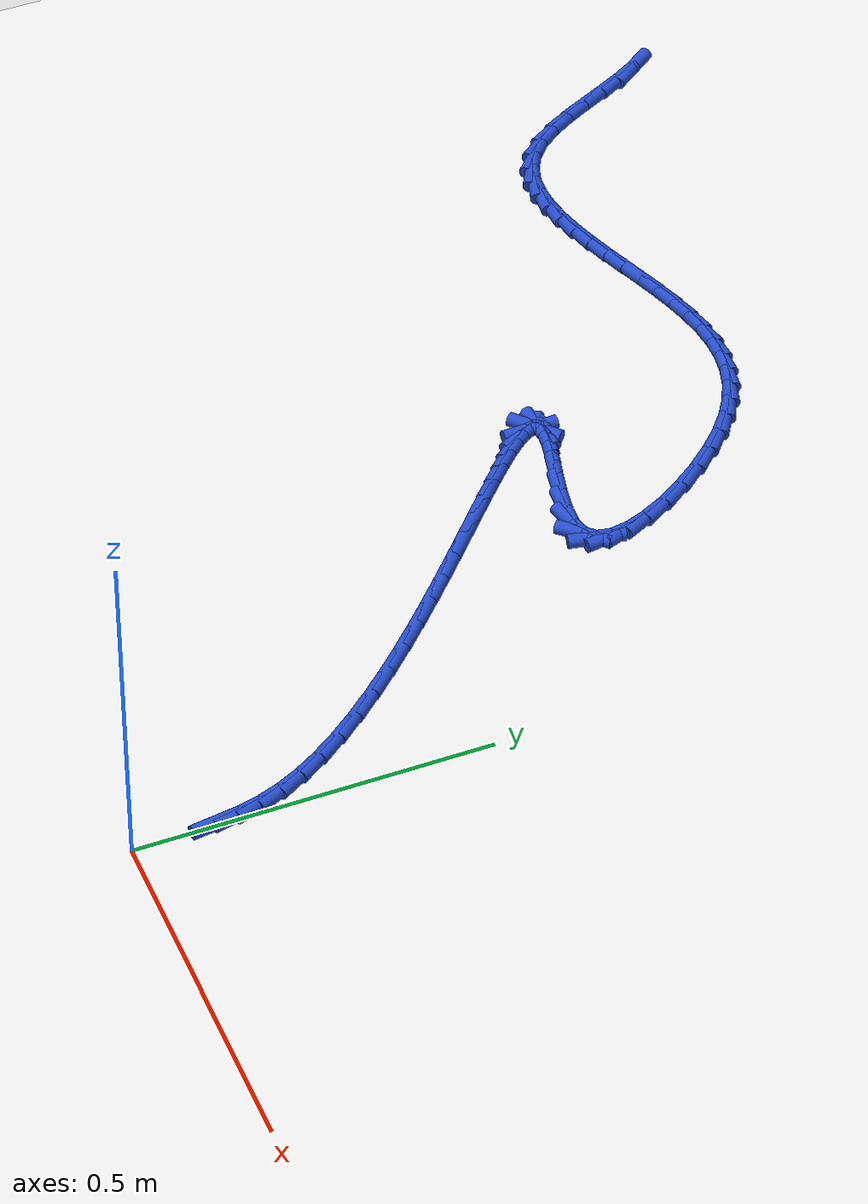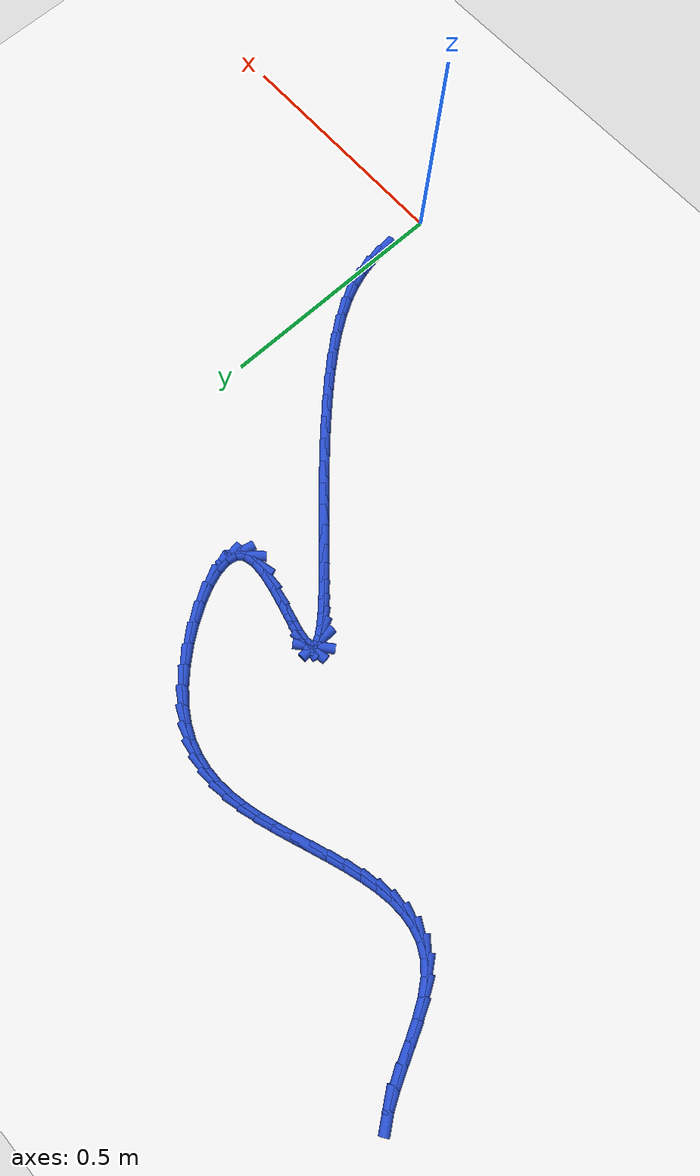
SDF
<sdf version="1.6">
 <world name="default">
  <model name="ground_plane">
   <static>1</static>
   <link name="link">
    <collision name="collision">
     <geometry><plane><normal>0 0 1</normal><size>100 100</size></plane></geometry>
     <surface><friction><ode><mu>100</mu><mu2>50</mu2></ode></friction></surface>
    </collision>
    <visual name="visual">
     <cast_shadows>0</cast_shadows>
     <geometry><plane><normal>0 0 1</normal><size>100 100</size></plane></geometry>
     <material>
      <script><uri>file://media/materials/scripts/gazebo.material</uri><name>Gazebo/WhiteGlow</name></script>
     </material>
    </visual>
   </link>
  </model>
  <model name="line">
   <link name="link_4">
    <pose>0.0023824561519398537 0.11782560075073899 0.01 0 1.57 -1.4353394648097961</pose>
    <collision name="collision">
     <geometry><cylinder><radius>0.01</radius><length>0.08</length></cylinder></geometry>
    </collision>
    <visual name="visual">
     <material>
      <script><name>Gazebo/Blue</name><uri>file://media/materials/scripts/gazebo.material</uri></script>
     </material>
     <geometry><cylinder><radius>0.01</radius><length>0.08</length></cylinder></geometry>
    </visual>
   </link>
   <link name="link_5">
    <pose>-0.0017239992584433435 0.14795555300501012 0.01 0 1.57 -1.3412280706990383</pose>
    <collision name="collision">
     <geometry><cylinder><radius>0.01</radius><length>0.08</length></cylinder></geometry>
    </collision>
    <visual name="visual">
     <material>
      <script><name>Gazebo/Blue</name><uri>file://media/materials/scripts/gazebo.material</uri></script>
     </material>
     <geometry><cylinder><radius>0.01</radius><length>0.08</length></cylinder></geometry>
    </visual>
   </link>
   <link name="link_6">
    <pose>-0.008896373854093979 0.1786476499546708 0.01 0 1.57 -1.2386501903018092</pose>
    <collision name="collision">
     <geometry><cylinder><radius>0.01</radius><length>0.08</length></cylinder></geometry>
    </collision>
    <visual name="visual">
     <material>
      <script><name>Gazebo/Blue</name><uri>file://media/materials/scripts/gazebo.material</uri></script>
     </material>
     <geometry><cylinder><radius>0.01</radius><length>0.08</length></cylinder></geometry>
    </visual>
   </link>
   <link name="link_7">
    <pose>-0.01972721333797213 0.21004825353409845 0.01 0 1.57 -1.1343315740553832</pose>
    <collision name="collision">
     <geometry><cylinder><radius>0.01</radius><length>0.08</length></cylinder></geometry>
    </collision>
    <visual name="visual">
     <material>
      <script><name>Gazebo/Blue</name><uri>file://media/materials/scripts/gazebo.material</uri></script>
     </material>
     <geometry><cylinder><radius>0.01</radius><length>0.08</length></cylinder></geometry>
    </visual>
   </link>
   <link name="link_8">
    <pose>-0.034767137621708605 0.24229032603372597 0.01 0 1.57 -1.04424895788949</pose>
    <collision name="collision">
     <geometry><cylinder><radius>0.01</radius><length>0.08</length></cylinder></geometry>
    </collision>
    <visual name="visual">
     <material>
      <script><name>Gazebo/Blue</name><uri>file://media/materials/scripts/gazebo.material</uri></script>
     </material>
     <geometry><cylinder><radius>0.01</radius><length>0.08</length></cylinder></geometry>
    </visual>
   </link>
   <link name="link_9">
    <pose>-0.05396341555243429 0.275313996426315 0.01 0 1.57 -0.9736424970683031</pose>
    <collision name="collision">
     <geometry><cylinder><radius>0.01</radius><length>0.08</length></cylinder></geometry>
    </collision>
    <visual name="visual">
     <material>
      <script><name>Gazebo/Blue</name><uri>file://media/materials/scripts/gazebo.material</uri></script>
     </material>
     <geometry><cylinder><radius>0.01</radius><length>0.08</length></cylinder></geometry>
    </visual>
   </link>
   <link name="link_10">
    <pose>-0.07681082350426537 0.3089147753522391 0.01 0 1.57 -0.9178499734605542</pose>
    <collision name="collision">
     <geometry><cylinder><radius>0.01</radius><length>0.08</length></cylinder></geometry>
    </collision>
    <visual name="visual">
     <material>
      <script><name>Gazebo/Blue</name><uri>file://media/materials/scripts/gazebo.material</uri></script>
     </material>
     <geometry><cylinder><radius>0.01</radius><length>0.08</length></cylinder></geometry>
    </visual>
   </link>
   <link name="link_11">
    <pose>-0.10279316896690821 0.3428846677542832 0.01 0 1.57 -0.8733222555795672</pose>
    <collision name="collision">
     <geometry><cylinder><radius>0.01</radius><length>0.08</length></cylinder></geometry>
    </collision>
    <visual name="visual">
     <material>
      <script><name>Gazebo/Blue</name><uri>file://media/materials/scripts/gazebo.material</uri></script>
     </material>
     <geometry><cylinder><radius>0.01</radius><length>0.08</length></cylinder></geometry>
    </visual>
   </link>
   <link name="link_12">
    <pose>-0.13139425943006916 0.3770156785752323 0.01 0 1.57 -0.8375288050863591</pose>
    <collision name="collision">
     <geometry><cylinder><radius>0.01</radius><length>0.08</length></cylinder></geometry>
    </collision>
    <visual name="visual">
     <material>
      <script><name>Gazebo/Blue</name><uri>file://media/materials/scripts/gazebo.material</uri></script>
     </material>
     <geometry><cylinder><radius>0.01</radius><length>0.08</length></cylinder></geometry>
    </visual>
   </link>
   <link name="link_13">
    <pose>-0.16209790238345462 0.4110998127578713 0.01 0 1.57 -0.8086740053437779</pose>
    <collision name="collision">
     <geometry><cylinder><radius>0.01</radius><length>0.08</length></cylinder></geometry>
    </collision>
    <visual name="visual">
     <material>
      <script><name>Gazebo/Blue</name><uri>file://media/materials/scripts/gazebo.material</uri></script>
     </material>
     <geometry><cylinder><radius>0.01</radius><length>0.08</length></cylinder></geometry>
    </visual>
   </link>
   <link name="link_14">
    <pose>-0.19438790531677103 0.44492907524498543 0.01 0 1.57 -0.7854914595426359</pose>
    <collision name="collision">
     <geometry><cylinder><radius>0.01</radius><length>0.08</length></cylinder></geometry>
    </collision>
    <visual name="visual">
     <material>
      <script><name>Gazebo/Blue</name><uri>file://media/materials/scripts/gazebo.material</uri></script>
     </material>
     <geometry><cylinder><radius>0.01</radius><length>0.08</length></cylinder></geometry>
    </visual>
   </link>
   <link name="link_15">
    <pose>-0.22774807571972458 0.47829547097935926 0.01 0 1.57 -0.767105393911474</pose>
    <collision name="collision">
     <geometry><cylinder><radius>0.01</radius><length>0.08</length></cylinder></geometry>
    </collision>
    <visual name="visual">
     <material>
      <script><name>Gazebo/Blue</name><uri>file://media/materials/scripts/gazebo.material</uri></script>
     </material>
     <geometry><cylinder><radius>0.01</radius><length>0.08</length></cylinder></geometry>
    </visual>
   </link>
   <link name="link_16">
    <pose>-0.26166222108202186 0.510991004903778 0.01 0 1.57 -0.7529434532309567</pose>
    <collision name="collision">
     <geometry><cylinder><radius>0.01</radius><length>0.08</length></cylinder></geometry>
    </collision>
    <visual name="visual">
     <material>
      <script><name>Gazebo/Blue</name><uri>file://media/materials/scripts/gazebo.material</uri></script>
     </material>
     <geometry><cylinder><radius>0.01</radius><length>0.08</length></cylinder></geometry>
    </visual>
   </link>
   <link name="link_17">
    <pose>-0.2956141488933692 0.5428076819610268 0.01 0 1.57 -0.7426897292777561</pose>
    <collision name="collision">
     <geometry><cylinder><radius>0.01</radius><length>0.08</length></cylinder></geometry>
    </collision>
    <visual name="visual">
     <material>
      <script><name>Gazebo/Blue</name><uri>file://media/materials/scripts/gazebo.material</uri></script>
     </material>
     <geometry><cylinder><radius>0.01</radius><length>0.08</length></cylinder></geometry>
    </visual>
   </link>
   <link name="link_18">
    <pose>-0.32908766664347294 0.5735375070938905 0.01 0 1.57 -0.7362736791888564</pose>
    <collision name="collision">
     <geometry><cylinder><radius>0.01</radius><length>0.08</length></cylinder></geometry>
    </collision>
    <visual name="visual">
     <material>
      <script><name>Gazebo/Blue</name><uri>file://media/materials/scripts/gazebo.material</uri></script>
     </material>
     <geometry><cylinder><radius>0.01</radius><length>0.08</length></cylinder></geometry>
    </visual>
   </link>
   <link name="link_19">
    <pose>-0.3615665818220395 0.6029724852451539 0.01 0 1.57 -0.733899243789681</pose>
    <collision name="collision">
     <geometry><cylinder><radius>0.01</radius><length>0.08</length></cylinder></geometry>
    </collision>
    <visual name="visual">
     <material>
      <script><name>Gazebo/Blue</name><uri>file://media/materials/scripts/gazebo.material</uri></script>
     </material>
     <geometry><cylinder><radius>0.01</radius><length>0.08</length></cylinder></geometry>
    </visual>
   </link>
   <link name="link_20">
    <pose>-0.3925347019187752 0.6309046213576021 0.01 0 1.57 -0.7361321577931114</pose>
    <collision name="collision">
     <geometry><cylinder><radius>0.01</radius><length>0.08</length></cylinder></geometry>
    </collision>
    <visual name="visual">
     <material>
      <script><name>Gazebo/Blue</name><uri>file://media/materials/scripts/gazebo.material</uri></script>
     </material>
     <geometry><cylinder><radius>0.01</radius><length>0.08</length></cylinder></geometry>
    </visual>
   </link>
   <link name="link_21">
    <pose>-0.4214758344233865 0.6571259203740201 0.01 0 1.57 -0.7440909394986537</pose>
    <collision name="collision">
     <geometry><cylinder><radius>0.01</radius><length>0.08</length></cylinder></geometry>
    </collision>
    <visual name="visual">
     <material>
      <script><name>Gazebo/Blue</name><uri>file://media/materials/scripts/gazebo.material</uri></script>
     </material>
     <geometry><cylinder><radius>0.01</radius><length>0.08</length></cylinder></geometry>
    </visual>
   </link>
   <link name="link_22">
    <pose>-0.44787378682557955 0.6814283872371926 0.01 0 1.57 -0.7598525828995999</pose>
    <collision name="collision">
     <geometry><cylinder><radius>0.01</radius><length>0.08</length></cylinder></geometry>
    </collision>
    <visual name="visual">
     <material>
      <script><name>Gazebo/Blue</name><uri>file://media/materials/scripts/gazebo.material</uri></script>
     </material>
     <geometry><cylinder><radius>0.01</radius><length>0.08</length></cylinder></geometry>
    </visual>
   </link>
   <link name="link_23">
    <pose>-0.47121236661506116 0.7036040268899051 0.01 0 1.57 -0.7873626858802841</pose>
    <collision name="collision">
     <geometry><cylinder><radius>0.01</radius><length>0.08</length></cylinder></geometry>
    </collision>
    <visual name="visual">
     <material>
      <script><name>Gazebo/Blue</name><uri>file://media/materials/scripts/gazebo.material</uri></script>
     </material>
     <geometry><cylinder><radius>0.01</radius><length>0.08</length></cylinder></geometry>
    </visual>
   </link>
   <link name="link_24">
    <pose>-0.49097538128153717 0.723444844274942 0.01 0 1.57 -0.8346993901617263</pose>
    <collision name="collision">
     <geometry><cylinder><radius>0.01</radius><length>0.08</length></cylinder></geometry>
    </collision>
    <visual name="visual">
     <material>
      <script><name>Gazebo/Blue</name><uri>file://media/materials/scripts/gazebo.material</uri></script>
     </material>
     <geometry><cylinder><radius>0.01</radius><length>0.08</length></cylinder></geometry>
    </visual>
   </link>
   <link name="link_25">
    <pose>-0.5066466383147146 0.740742844335089 0.01 0 1.57 -0.920601583920619</pose>
    <collision name="collision">
     <geometry><cylinder><radius>0.01</radius><length>0.08</length></cylinder></geometry>
    </collision>
    <visual name="visual">
     <material>
      <script><name>Gazebo/Blue</name><uri>file://media/materials/scripts/gazebo.material</uri></script>
     </material>
     <geometry><cylinder><radius>0.01</radius><length>0.08</length></cylinder></geometry>
    </visual>
   </link>
   <link name="link_26">
    <pose>-0.517709945204299 0.75529003201313 0.01 0 1.57 -1.0971906398215314</pose>
    <collision name="collision">
     <geometry><cylinder><radius>0.01</radius><length>0.08</length></cylinder></geometry>
    </collision>
    <visual name="visual">
     <material>
      <script><name>Gazebo/Blue</name><uri>file://media/materials/scripts/gazebo.material</uri></script>
     </material>
     <geometry><cylinder><radius>0.01</radius><length>0.08</length></cylinder></geometry>
    </visual>
   </link>
   <link name="link_27">
    <pose>-0.5236491094399977 0.7668784122518512 0.01 0 1.57 -1.5353274684425158</pose>
    <collision name="collision">
     <geometry><cylinder><radius>0.01</radius><length>0.08</length></cylinder></geometry>
    </collision>
    <visual name="visual">
     <material>
      <script><name>Gazebo/Blue</name><uri>file://media/materials/scripts/gazebo.material</uri></script>
     </material>
     <geometry><cylinder><radius>0.01</radius><length>0.08</length></cylinder></geometry>
    </visual>
   </link>
   <link name="link_28">
    <pose>-0.5239479385115163 0.7752999899940368 0.01 0 1.57 0.7111691689588562</pose>
    <collision name="collision">
     <geometry><cylinder><radius>0.01</radius><length>0.08</length></cylinder></geometry>
    </collision>
    <visual name="visual">
     <material>
      <script><name>Gazebo/Blue</name><uri>file://media/materials/scripts/gazebo.material</uri></script>
     </material>
     <geometry><cylinder><radius>0.01</radius><length>0.08</length></cylinder></geometry>
    </visual>
   </link>
   <link name="link_29">
    <pose>-0.5180902399085616 0.780346770182472 0.01 0 1.57 0.11630738938080655</pose>
    <collision name="collision">
     <geometry><cylinder><radius>0.01</radius><length>0.08</length></cylinder></geometry>
    </collision>
    <visual name="visual">
     <material>
      <script><name>Gazebo/Blue</name><uri>file://media/materials/scripts/gazebo.material</uri></script>
     </material>
     <geometry><cylinder><radius>0.01</radius><length>0.08</length></cylinder></geometry>
    </visual>
   </link>
   <link name="link_30">
    <pose>-0.50555982112084 0.7818107577599416 0.01 0 1.57 -0.11745280071256992</pose>
    <collision name="collision">
     <geometry><cylinder><radius>0.01</radius><length>0.08</length></cylinder></geometry>
    </collision>
    <visual name="visual">
     <material>
      <script><name>Gazebo/Blue</name><uri>file://media/materials/scripts/gazebo.material</uri></script>
     </material>
     <geometry><cylinder><radius>0.01</radius><length>0.08</length></cylinder></geometry>
    </visual>
   </link>
   <link name="link_31">
    <pose>-0.4858404896380576 0.779483957669231 0.01 0 1.57 -0.2210084833847514</pose>
    <collision name="collision">
     <geometry><cylinder><radius>0.01</radius><length>0.08</length></cylinder></geometry>
    </collision>
    <visual name="visual">
     <material>
      <script><name>Gazebo/Blue</name><uri>file://media/materials/scripts/gazebo.material</uri></script>
     </material>
     <geometry><cylinder><radius>0.01</radius><length>0.08</length></cylinder></geometry>
    </visual>
   </link>
   <link name="link_32">
    <pose>-0.4587817184295532 0.7734044315404087 0.01 0 1.57 -0.2501404502065189</pose>
    <collision name="collision">
     <geometry><cylinder><radius>0.01</radius><length>0.08</length></cylinder></geometry>
    </collision>
    <visual name="visual">
     <material>
      <script><name>Gazebo/Blue</name><uri>file://media/materials/scripts/gazebo.material</uri></script>
     </material>
     <geometry><cylinder><radius>0.01</radius><length>0.08</length></cylinder></geometry>
    </visual>
   </link>
   <link name="link_33">
    <pose>-0.4265503221247066 0.7651695826530442 0.01 0 1.57 -0.2340038350483823</pose>
    <collision name="collision">
     <geometry><cylinder><radius>0.01</radius><length>0.08</length></cylinder></geometry>
    </collision>
    <visual name="visual">
     <material>
      <script><name>Gazebo/Blue</name><uri>file://media/materials/scripts/gazebo.material</uri></script>
     </material>
     <geometry><cylinder><radius>0.01</radius><length>0.08</length></cylinder></geometry>
    </visual>
   </link>
   <link name="link_34">
    <pose>-0.3922181182099734 0.7569857916646607 0.01 0 1.57 -0.17577822024683615</pose>
    <collision name="collision">
     <geometry><cylinder><radius>0.01</radius><length>0.08</length></cylinder></geometry>
    </collision>
    <visual name="visual">
     <material>
      <script><name>Gazebo/Blue</name><uri>file://media/materials/scripts/gazebo.material</uri></script>
     </material>
     <geometry><cylinder><radius>0.01</radius><length>0.08</length></cylinder></geometry>
    </visual>
   </link>
   <link name="link_35">
    <pose>-0.3588590000979135 0.7510608361256487 0.01 0 1.57 -0.049711181442765685</pose>
    <collision name="collision">
     <geometry><cylinder><radius>0.01</radius><length>0.08</length></cylinder></geometry>
    </collision>
    <visual name="visual">
     <material>
      <script><name>Gazebo/Blue</name><uri>file://media/materials/scripts/gazebo.material</uri></script>
     </material>
     <geometry><cylinder><radius>0.01</radius><length>0.08</length></cylinder></geometry>
    </visual>
   </link>
   <link name="link_36">
    <pose>-0.3295468612010875 0.7496024935863989 0.01 0 1.57 0.23085373428212153</pose>
    <collision name="collision">
     <geometry><cylinder><radius>0.01</radius><length>0.08</length></cylinder></geometry>
    </collision>
    <visual name="visual">
     <material>
      <script><name>Gazebo/Blue</name><uri>file://media/materials/scripts/gazebo.material</uri></script>
     </material>
     <geometry><cylinder><radius>0.01</radius><length>0.08</length></cylinder></geometry>
    </visual>
   </link>
   <link name="link_37">
    <pose>-0.3073554871068196 0.7548184447226095 0.01 0 1.57 0.806841206505881</pose>
    <collision name="collision">
     <geometry><cylinder><radius>0.01</radius><length>0.08</length></cylinder></geometry>
    </collision>
    <visual name="visual">
     <material>
      <script><name>Gazebo/Blue</name><uri>file://media/materials/scripts/gazebo.material</uri></script>
     </material>
     <geometry><cylinder><radius>0.01</radius><length>0.08</length></cylinder></geometry>
    </visual>
   </link>
   <link name="link_38">
    <pose>-0.2945476305047943 0.7681877044053672 0.01 0 1.57 1.3818599184849405</pose>
    <collision name="collision">
     <geometry><cylinder><radius>0.01</radius><length>0.08</length></cylinder></geometry>
    </collision>
    <visual name="visual">
     <material>
      <script><name>Gazebo/Blue</name><uri>file://media/materials/scripts/gazebo.material</uri></script>
     </material>
     <geometry><cylinder><radius>0.01</radius><length>0.08</length></cylinder></geometry>
    </visual>
   </link>
   <link name="link_39">
    <pose>-0.29062386848283916 0.7887076336625384 0.01 0 1.57 -1.4236883605855977</pose>
    <collision name="collision">
     <geometry><cylinder><radius>0.01</radius><length>0.08</length></cylinder></geometry>
    </collision>
    <visual name="visual">
     <material>
      <script><name>Gazebo/Blue</name><uri>file://media/materials/scripts/gazebo.material</uri></script>
     </material>
     <geometry><cylinder><radius>0.01</radius><length>0.08</length></cylinder></geometry>
    </visual>
   </link>
   <link name="link_40">
    <pose>-0.2944972695206044 0.8148477512680685 0.01 0 1.57 -1.2340273860745257</pose>
    <collision name="collision">
     <geometry><cylinder><radius>0.01</radius><length>0.08</length></cylinder></geometry>
    </collision>
    <visual name="visual">
     <material>
      <script><name>Gazebo/Blue</name><uri>file://media/materials/scripts/gazebo.material</uri></script>
     </material>
     <geometry><cylinder><radius>0.01</radius><length>0.08</length></cylinder></geometry>
    </visual>
   </link>
   <link name="link_41">
    <pose>-0.3050809020977397 0.8450775759959032 0.01 0 1.57 -1.111736143907085</pose>
    <collision name="collision">
     <geometry><cylinder><radius>0.01</radius><length>0.08</length></cylinder></geometry>
    </collision>
    <visual name="visual">
     <material>
      <script><name>Gazebo/Blue</name><uri>file://media/materials/scripts/gazebo.material</uri></script>
     </material>
     <geometry><cylinder><radius>0.01</radius><length>0.08</length></cylinder></geometry>
    </visual>
   </link>
   <link name="link_42">
    <pose>-0.32128783469389494 0.8778666266199875 0.01 0 1.57 -1.02059358967457</pose>
    <collision name="collision">
     <geometry><cylinder><radius>0.01</radius><length>0.08</length></cylinder></geometry>
    </collision>
    <visual name="visual">
     <material>
      <script><name>Gazebo/Blue</name><uri>file://media/materials/scripts/gazebo.material</uri></script>
     </material>
     <geometry><cylinder><radius>0.01</radius><length>0.08</length></cylinder></geometry>
    </visual>
   </link>
   <link name="link_43">
    <pose>-0.3420311357887203 0.911684421914267 0.01 0 1.57 -0.9427292144932088</pose>
    <collision name="collision">
     <geometry><cylinder><radius>0.01</radius><length>0.08</length></cylinder></geometry>
    </collision>
    <visual name="visual">
     <material>
      <script><name>Gazebo/Blue</name><uri>file://media/materials/scripts/gazebo.material</uri></script>
     </material>
     <geometry><cylinder><radius>0.01</radius><length>0.08</length></cylinder></geometry>
    </visual>
   </link>
   <link name="link_44">
    <pose>-0.3662238738618657 0.9450004806526877 0.01 0 1.57 -0.8669711093233123</pose>
    <collision name="collision">
     <geometry><cylinder><radius>0.01</radius><length>0.08</length></cylinder></geometry>
    </collision>
    <visual name="visual">
     <material>
      <script><name>Gazebo/Blue</name><uri>file://media/materials/scripts/gazebo.material</uri></script>
     </material>
     <geometry><cylinder><radius>0.01</radius><length>0.08</length></cylinder></geometry>
    </visual>
   </link>
   <link name="link_45">
    <pose>-0.3927791173929808 0.9762843216091943 0.01 0 1.57 -0.7834238788024632</pose>
    <collision name="collision">
     <geometry><cylinder><radius>0.01</radius><length>0.08</length></cylinder></geometry>
    </collision>
    <visual name="visual">
     <material>
      <script><name>Gazebo/Blue</name><uri>file://media/materials/scripts/gazebo.material</uri></script>
     </material>
     <geometry><cylinder><radius>0.01</radius><length>0.08</length></cylinder></geometry>
    </visual>
   </link>
   <link name="link_46">
    <pose>-0.42060993486171594 1.004005463557733 0.01 0 1.57 -0.68135008948826</pose>
    <collision name="collision">
     <geometry><cylinder><radius>0.01</radius><length>0.08</length></cylinder></geometry>
    </collision>
    <visual name="visual">
     <material>
      <script><name>Gazebo/Blue</name><uri>file://media/materials/scripts/gazebo.material</uri></script>
     </material>
     <geometry><cylinder><radius>0.01</radius><length>0.08</length></cylinder></geometry>
    </visual>
   </link>
   <link name="link_47">
    <pose>-0.4487565725889073 1.0268294813146133 0.01 0 1.57 -0.5614868905433444</pose>
    <collision name="collision">
     <geometry><cylinder><radius>0.01</radius><length>0.08</length></cylinder></geometry>
    </collision>
    <visual name="visual">
     <material>
      <script><name>Gazebo/Blue</name><uri>file://media/materials/scripts/gazebo.material</uri></script>
     </material>
     <geometry><cylinder><radius>0.01</radius><length>0.08</length></cylinder></geometry>
    </visual>
   </link>
   <link name="link_48">
    <pose>-0.4770344089896217 1.044616885301963 0.01 0 1.57 -0.42951385783106766</pose>
    <collision name="collision">
     <geometry><cylinder><radius>0.01</radius><length>0.08</length></cylinder></geometry>
    </collision>
    <visual name="visual">
     <material>
      <script><name>Gazebo/Blue</name><uri>file://media/materials/scripts/gazebo.material</uri></script>
     </material>
     <geometry><cylinder><radius>0.01</radius><length>0.08</length></cylinder></geometry>
    </visual>
   </link>
   <link name="link_49">
    <pose>-0.5055508287335735 1.0576783397587843 0.01 0 1.57 -0.29107896437109526</pose>
    <collision name="collision">
     <geometry><cylinder><radius>0.01</radius><length>0.08</length></cylinder></geometry>
    </collision>
    <visual name="visual">
     <material>
      <script><name>Gazebo/Blue</name><uri>file://media/materials/scripts/gazebo.material</uri></script>
     </material>
     <geometry><cylinder><radius>0.01</radius><length>0.08</length></cylinder></geometry>
    </visual>
   </link>
   <link name="link_50">
    <pose>-0.5344137494787723 1.0663253305733127 0.01 0 1.57 -0.15377048607688243</pose>
    <collision name="collision">
     <geometry><cylinder><radius>0.01</radius><length>0.08</length></cylinder></geometry>
    </collision>
    <visual name="visual">
     <material>
      <script><name>Gazebo/Blue</name><uri>file://media/materials/scripts/gazebo.material</uri></script>
     </material>
     <geometry><cylinder><radius>0.01</radius><length>0.08</length></cylinder></geometry>
    </visual>
   </link>
   <link name="link_51">
    <pose>-0.5637310888832271 1.070869343633784 0.01 0 1.57 -0.025179729439198904</pose>
    <collision name="collision">
     <geometry><cylinder><radius>0.01</radius><length>0.08</length></cylinder></geometry>
    </collision>
    <visual name="visual">
     <material>
      <script><name>Gazebo/Blue</name><uri>file://media/materials/scripts/gazebo.material</uri></script>
     </material>
     <geometry><cylinder><radius>0.01</radius><length>0.08</length></cylinder></geometry>
    </visual>
   </link>
   <link name="link_52">
    <pose>-0.5936107646049474 1.0716218648284324 0.01 0 1.57 0.08904349330686956</pose>
    <collision name="collision">
     <geometry><cylinder><radius>0.01</radius><length>0.08</length></cylinder></geometry>
    </collision>
    <visual name="visual">
     <material>
      <script><name>Gazebo/Blue</name><uri>file://media/materials/scripts/gazebo.material</uri></script>
     </material>
     <geometry><cylinder><radius>0.01</radius><length>0.08</length></cylinder></geometry>
    </visual>
   </link>
   <link name="link_53">
    <pose>-0.6241606943019424 1.0688943800454949 0.01 0 1.57 0.18585548429169674</pose>
    <collision name="collision">
     <geometry><cylinder><radius>0.01</radius><length>0.08</length></cylinder></geometry>
    </collision>
    <visual name="visual">
     <material>
      <script><name>Gazebo/Blue</name><uri>file://media/materials/scripts/gazebo.material</uri></script>
     </material>
     <geometry><cylinder><radius>0.01</radius><length>0.08</length></cylinder></geometry>
    </visual>
   </link>
   <link name="link_54">
    <pose>-0.6554833786266323 1.0630049189397592 0.01 0 1.57 0.26089669984190533</pose>
    <collision name="collision">
     <geometry><cylinder><radius>0.01</radius><length>0.08</length></cylinder></geometry>
    </collision>
    <visual name="visual">
     <material>
      <script><name>Gazebo/Blue</name><uri>file://media/materials/scripts/gazebo.material</uri></script>
     </material>
     <geometry><cylinder><radius>0.01</radius><length>0.08</length></cylinder></geometry>
    </visual>
   </link>
   <link name="link_55">
    <pose>-0.6875355833711626 1.0544475595175822 0.01 0 1.57 0.31287571941182585</pose>
    <collision name="collision">
     <geometry><cylinder><radius>0.01</radius><length>0.08</length></cylinder></geometry>
    </collision>
    <visual name="visual">
     <material>
      <script><name>Gazebo/Blue</name><uri>file://media/materials/scripts/gazebo.material</uri></script>
     </material>
     <geometry><cylinder><radius>0.01</radius><length>0.08</length></cylinder></geometry>
    </visual>
   </link>
   <link name="link_56">
    <pose>-0.7201155248386961 1.043907908264675 0.01 0 1.57 0.345109959659333</pose>
    <collision name="collision">
     <geometry><cylinder><radius>0.01</radius><length>0.08</length></cylinder></geometry>
    </collision>
    <visual name="visual">
     <material>
      <script><name>Gazebo/Blue</name><uri>file://media/materials/scripts/gazebo.material</uri></script>
     </material>
     <geometry><cylinder><radius>0.01</radius><length>0.08</length></cylinder></geometry>
    </visual>
   </link>
   <link name="link_57">
    <pose>-0.7530134336931754 1.0320812183540145 0.01 0 1.57 0.35986419046383605</pose>
    <collision name="collision">
     <geometry><cylinder><radius>0.01</radius><length>0.08</length></cylinder></geometry>
    </collision>
    <visual name="visual">
     <material>
      <script><name>Gazebo/Blue</name><uri>file://media/materials/scripts/gazebo.material</uri></script>
     </material>
     <geometry><cylinder><radius>0.01</radius><length>0.08</length></cylinder></geometry>
    </visual>
   </link>
   <link name="link_58">
    <pose>-0.7860195405985431 1.0196627429585778 0.01 0 1.57 0.3581259093521344</pose>
    <collision name="collision">
     <geometry><cylinder><radius>0.01</radius><length>0.08</length></cylinder></geometry>
    </collision>
    <visual name="visual">
     <material>
      <script><name>Gazebo/Blue</name><uri>file://media/materials/scripts/gazebo.material</uri></script>
     </material>
     <geometry><cylinder><radius>0.01</radius><length>0.08</length></cylinder></geometry>
    </visual>
   </link>
   <link name="link_59">
    <pose>-0.8189240762187421 1.007347735251343 0.01 0 1.57 0.33964196082103437</pose>
    <collision name="collision">
     <geometry><cylinder><radius>0.01</radius><length>0.08</length></cylinder></geometry>
    </collision>
    <visual name="visual">
     <material>
      <script><name>Gazebo/Blue</name><uri>file://media/materials/scripts/gazebo.material</uri></script>
     </material>
     <geometry><cylinder><radius>0.01</radius><length>0.08</length></cylinder></geometry>
    </visual>
   </link>
   <link name="link_60">
    <pose>-0.8515172712177145 0.9958314484052864 0.01 0 1.57 0.3028787962446445</pose>
    <collision name="collision">
     <geometry><cylinder><radius>0.01</radius><length>0.08</length></cylinder></geometry>
    </collision>
    <visual name="visual">
     <material>
      <script><name>Gazebo/Blue</name><uri>file://media/materials/scripts/gazebo.material</uri></script>
     </material>
     <geometry><cylinder><radius>0.01</radius><length>0.08</length></cylinder></geometry>
    </visual>
   </link>
   <link name="link_61">
    <pose>-0.8835893562594037 0.9858091355933855 0.01 0 1.57 0.24491212057106673</pose>
    <collision name="collision">
     <geometry><cylinder><radius>0.01</radius><length>0.08</length></cylinder></geometry>
    </collision>
    <visual name="visual">
     <material>
      <script><name>Gazebo/Blue</name><uri>file://media/materials/scripts/gazebo.material</uri></script>
     </material>
     <geometry><cylinder><radius>0.01</radius><length>0.08</length></cylinder></geometry>
    </visual>
   </link>
   <link name="link_62">
    <pose>-0.9149305620077517 0.977976049988618 0.01 0 1.57 0.16136477019962725</pose>
    <collision name="collision">
     <geometry><cylinder><radius>0.01</radius><length>0.08</length></cylinder></geometry>
    </collision>
    <visual name="visual">
     <material>
      <script><name>Gazebo/Blue</name><uri>file://media/materials/scripts/gazebo.material</uri></script>
     </material>
     <geometry><cylinder><radius>0.01</radius><length>0.08</length></cylinder></geometry>
    </visual>
   </link>
   <link name="link_63">
    <pose>-0.945331119126702 0.9730274447639607 0.01 0 1.57 0.046764688557050176</pose>
    <collision name="collision">
     <geometry><cylinder><radius>0.01</radius><length>0.08</length></cylinder></geometry>
    </collision>
    <visual name="visual">
     <material>
      <script><name>Gazebo/Blue</name><uri>file://media/materials/scripts/gazebo.material</uri></script>
     </material>
     <geometry><cylinder><radius>0.01</radius><length>0.08</length></cylinder></geometry>
    </visual>
   </link>
   <link name="link_64">
    <pose>-0.9745812582801963 0.9716585730923908 0.01 0 1.57 -0.1038246799449227</pose>
    <collision name="collision">
     <geometry><cylinder><radius>0.01</radius><length>0.08</length></cylinder></geometry>
    </collision>
    <visual name="visual">
     <material>
      <script><name>Gazebo/Blue</name><uri>file://media/materials/scripts/gazebo.material</uri></script>
     </material>
     <geometry><cylinder><radius>0.01</radius><length>0.08</length></cylinder></geometry>
    </visual>
   </link>
   <link name="link_65">
    <pose>-1.0024712101321778 0.9745646881468858 0.01 0 1.57 -0.2907719402075284</pose>
    <collision name="collision">
     <geometry><cylinder><radius>0.01</radius><length>0.08</length></cylinder></geometry>
    </collision>
    <visual name="visual">
     <material>
      <script><name>Gazebo/Blue</name><uri>file://media/materials/scripts/gazebo.material</uri></script>
     </material>
     <geometry><cylinder><radius>0.01</radius><length>0.08</length></cylinder></geometry>
    </visual>
   </link>
   <link name="link_66">
    <pose>-1.028791205346589 0.9824410431004228 0.01 0 1.57 -0.5042405947862018</pose>
    <collision name="collision">
     <geometry><cylinder><radius>0.01</radius><length>0.08</length></cylinder></geometry>
    </collision>
    <visual name="visual">
     <material>
      <script><name>Gazebo/Blue</name><uri>file://media/materials/scripts/gazebo.material</uri></script>
     </material>
     <geometry><cylinder><radius>0.01</radius><length>0.08</length></cylinder></geometry>
    </visual>
   </link>
   <link name="link_67">
    <pose>-1.053331474587373 0.9959828911259789 0.01 0 1.57 -0.7230999425111835</pose>
    <collision name="collision">
     <geometry><cylinder><radius>0.01</radius><length>0.08</length></cylinder></geometry>
    </collision>
    <visual name="visual">
     <material>
      <script><name>Gazebo/Blue</name><uri>file://media/materials/scripts/gazebo.material</uri></script>
     </material>
     <geometry><cylinder><radius>0.01</radius><length>0.08</length></cylinder></geometry>
    </visual>
   </link>
   <link name="link_68">
    <pose>-1.0758822515608426 1.015885472570044 0.01 0 1.57 -0.9119410531576374</pose>
    <collision name="collision">
     <geometry><cylinder><radius>0.01</radius><length>0.08</length></cylinder></geometry>
    </collision>
    <visual name="visual">
     <material>
      <script><name>Gazebo/Blue</name><uri>file://media/materials/scripts/gazebo.material</uri></script>
     </material>
     <geometry><cylinder><radius>0.01</radius><length>0.08</length></cylinder></geometry>
    </visual>
   </link>
   <link name="link_69">
    <pose>-1.0963561217771016 1.0423281984667272 0.01 0 1.57 -1.0305944536917262</pose>
    <collision name="collision">
     <geometry><cylinder><radius>0.01</radius><length>0.08</length></cylinder></geometry>
    </collision>
    <visual name="visual">
     <material>
      <script><name>Gazebo/Blue</name><uri>file://media/materials/scripts/gazebo.material</uri></script>
     </material>
     <geometry><cylinder><radius>0.01</radius><length>0.08</length></cylinder></geometry>
    </visual>
   </link>
   <link name="link_70">
    <pose>-1.1151129103551325 1.0736049391979423 0.01 0 1.57 -1.0951015752937105</pose>
    <collision name="collision">
     <geometry><cylinder><radius>0.01</radius><length>0.08</length></cylinder></geometry>
    </collision>
    <visual name="visual">
     <material>
      <script><name>Gazebo/Blue</name><uri>file://media/materials/scripts/gazebo.material</uri></script>
     </material>
     <geometry><cylinder><radius>0.01</radius><length>0.08</length></cylinder></geometry>
    </visual>
   </link>
   <link name="link_71">
    <pose>-1.1326146044418868 1.1075788549557535 0.01 0 1.57 -1.120171010380436</pose>
    <collision name="collision">
     <geometry><cylinder><radius>0.01</radius><length>0.08</length></cylinder></geometry>
    </collision>
    <visual name="visual">
     <material>
      <script><name>Gazebo/Blue</name><uri>file://media/materials/scripts/gazebo.material</uri></script>
     </material>
     <geometry><cylinder><radius>0.01</radius><length>0.08</length></cylinder></geometry>
    </visual>
   </link>
   <link name="link_72">
    <pose>-1.149323191184316 1.1421131059322278 0.01 0 1.57 -1.1096132407392554</pose>
    <collision name="collision">
     <geometry><cylinder><radius>0.01</radius><length>0.08</length></cylinder></geometry>
    </collision>
    <visual name="visual">
     <material>
      <script><name>Gazebo/Blue</name><uri>file://media/materials/scripts/gazebo.material</uri></script>
     </material>
     <geometry><cylinder><radius>0.01</radius><length>0.08</length></cylinder></geometry>
    </visual>
   </link>
   <link name="link_73">
    <pose>-1.1657006577293725 1.17507085231943 0.01 0 1.57 -1.0568922852145886</pose>
    <collision name="collision">
     <geometry><cylinder><radius>0.01</radius><length>0.08</length></cylinder></geometry>
    </collision>
    <visual name="visual">
     <material>
      <script><name>Gazebo/Blue</name><uri>file://media/materials/scripts/gazebo.material</uri></script>
     </material>
     <geometry><cylinder><radius>0.01</radius><length>0.08</length></cylinder></geometry>
    </visual>
   </link>
   <link name="link_74">
    <pose>-1.1822089912240064 1.204315254309424 0.01 0 1.57 -0.9395661210148061</pose>
    <collision name="collision">
     <geometry><cylinder><radius>0.01</radius><length>0.08</length></cylinder></geometry>
    </collision>
    <visual name="visual">
     <material>
      <script><name>Gazebo/Blue</name><uri>file://media/materials/scripts/gazebo.material</uri></script>
     </material>
     <geometry><cylinder><radius>0.01</radius><length>0.08</length></cylinder></geometry>
    </visual>
   </link>
  </model>
 </world>
</sdf>
